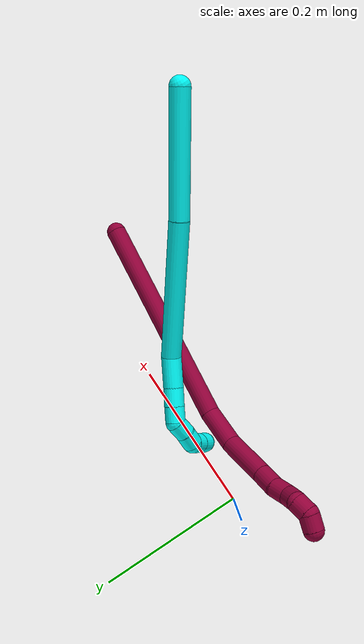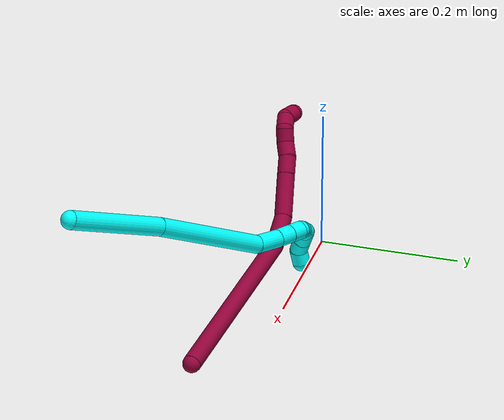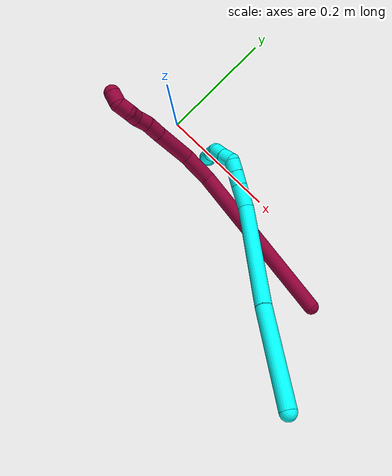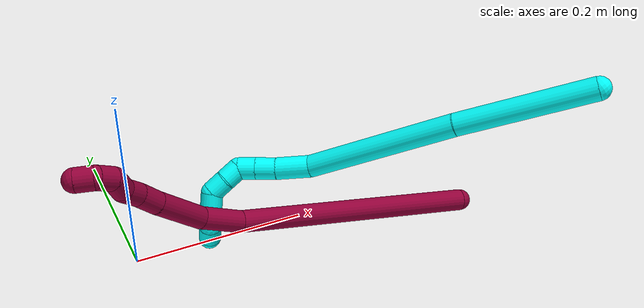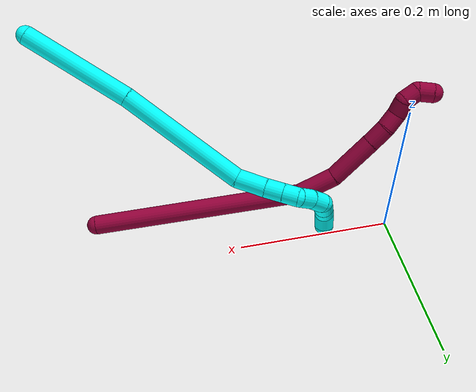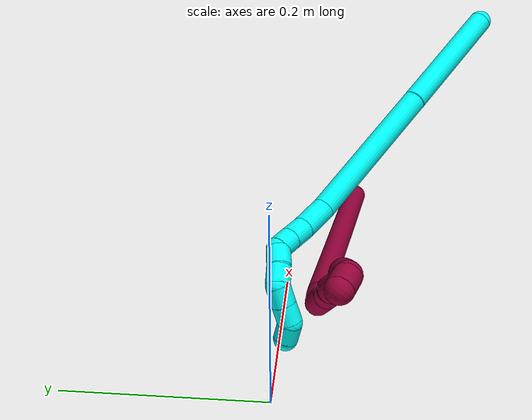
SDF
<sdf version="1.7">
 <world name="default">
  <model name="3">
   <static>0</static>
   <link name="3">
    <collision name="collision-cylinder-e_1_1_4">
     <pose>-0.018677 -0.027858 -0.065253 2.7381 -0.257404 -1.12832</pose>
     <geometry><cylinder><radius>0.0125</radius><length>0.146736</length></cylinder></geometry>
     <surface>
      <friction><ode><mu>1.16</mu><mu2>1.16</mu2><slip1>0</slip1><slip2>0</slip2></ode></friction>
      <contact><ode><kp>1e+06</kp><kd>1</kd><max_vel>0</max_vel><min_depth>0.001</min_depth></ode></contact>
     </surface>
    </collision>
    <visual name="visual-cylinder-e_1_1_4">
     <pose>-0.018677 -0.027858 -0.065253 2.7381 -0.257404 -1.12832</pose>
     <geometry><cylinder><radius>0.0125</radius><length>0.146736</length></cylinder></geometry>
     <material><ambient>0.003922 1 0.996078 1</ambient></material>
    </visual>
    <collision name="collision-cylinder-e_2_4_5">
     <pose>-0.065976 -0.085598 -0.205381 2.76186 -0.341143 -1.46151</pose>
     <geometry><cylinder><radius>0.0125</radius><length>0.171094</length></cylinder></geometry>
     <surface>
      <friction><ode><mu>1.16</mu><mu2>1.16</mu2><slip1>0</slip1><slip2>0</slip2></ode></friction>
      <contact><ode><kp>1e+06</kp><kd>1</kd><max_vel>0</max_vel><min_depth>0.001</min_depth></ode></contact>
     </surface>
    </collision>
    <visual name="visual-cylinder-e_2_4_5">
     <pose>-0.065976 -0.085598 -0.205381 2.76186 -0.341143 -1.46151</pose>
     <geometry><cylinder><radius>0.0125</radius><length>0.171094</length></cylinder></geometry>
     <material><ambient>0.003922 1 0.996078 1</ambient></material>
    </visual>
    <collision name="collision-cylinder-e_3_5_6">
     <pose>-0.095419 -0.125686 -0.296745 2.58734 -0.042391 -0.148777</pose>
     <geometry><cylinder><radius>0.0125</radius><length>0.03882</length></cylinder></geometry>
     <surface>
      <friction><ode><mu>1.16</mu><mu2>1.16</mu2><slip1>0</slip1><slip2>0</slip2></ode></friction>
      <contact><ode><kp>1e+06</kp><kd>1</kd><max_vel>0</max_vel><min_depth>0.001</min_depth></ode></contact>
     </surface>
    </collision>
    <visual name="visual-cylinder-e_3_5_6">
     <pose>-0.095419 -0.125686 -0.296745 2.58734 -0.042391 -0.148777</pose>
     <geometry><cylinder><radius>0.0125</radius><length>0.03882</length></cylinder></geometry>
     <material><ambient>0.003922 1 0.996078 1</ambient></material>
    </visual>
    <collision name="collision-cylinder-e_4_6_7">
     <pose>-0.096244 -0.142754 -0.322582 2.50845 -0.000184 -0.000561</pose>
     <geometry><cylinder><radius>0.0125</radius><length>0.023192</length></cylinder></geometry>
     <surface>
      <friction><ode><mu>1.16</mu><mu2>1.16</mu2><slip1>0</slip1><slip2>0</slip2></ode></friction>
      <contact><ode><kp>1e+06</kp><kd>1</kd><max_vel>0</max_vel><min_depth>0.001</min_depth></ode></contact>
     </surface>
    </collision>
    <visual name="visual-cylinder-e_4_6_7">
     <pose>-0.096244 -0.142754 -0.322582 2.50845 -0.000184 -0.000561</pose>
     <geometry><cylinder><radius>0.0125</radius><length>0.023192</length></cylinder></geometry>
     <material><ambient>0.003922 1 0.996078 1</ambient></material>
    </visual>
    <collision name="collision-cylinder-e_5_7_8">
     <pose>-0.096125 -0.155409 -0.340122 2.52595 0.01208 0.037991</pose>
     <geometry><cylinder><radius>0.0125</radius><length>0.020069</length></cylinder></geometry>
     <surface>
      <friction><ode><mu>1.16</mu><mu2>1.16</mu2><slip1>0</slip1><slip2>0</slip2></ode></friction>
      <contact><ode><kp>1e+06</kp><kd>1</kd><max_vel>0</max_vel><min_depth>0.001</min_depth></ode></contact>
     </surface>
    </collision>
    <visual name="visual-cylinder-e_5_7_8">
     <pose>-0.096125 -0.155409 -0.340122 2.52595 0.01208 0.037991</pose>
     <geometry><cylinder><radius>0.0125</radius><length>0.020069</length></cylinder></geometry>
     <material><ambient>0.003922 1 0.996078 1</ambient></material>
    </visual>
    <collision name="collision-cylinder-e_6_8_9">
     <pose>-0.094594 -0.159812 -0.358126 -3.00068 0.141331 -1.57377</pose>
     <geometry><cylinder><radius>0.0125</radius><length>0.02002</length></cylinder></geometry>
     <surface>
      <friction><ode><mu>1.16</mu><mu2>1.16</mu2><slip1>0</slip1><slip2>0</slip2></ode></friction>
      <contact><ode><kp>1e+06</kp><kd>1</kd><max_vel>0</max_vel><min_depth>0.001</min_depth></ode></contact>
     </surface>
    </collision>
    <visual name="visual-cylinder-e_6_8_9">
     <pose>-0.094594 -0.159812 -0.358126 -3.00068 0.141331 -1.57377</pose>
     <geometry><cylinder><radius>0.0125</radius><length>0.02002</length></cylinder></geometry>
     <material><ambient>0.003922 1 0.996078 1</ambient></material>
    </visual>
    <collision name="collision-cylinder-e_7_9_10">
     <pose>-0.09326 -0.157268 -0.377883 -3.02628 -0.007594 0.131381</pose>
     <geometry><cylinder><radius>0.0125</radius><length>0.020024</length></cylinder></geometry>
     <surface>
      <friction><ode><mu>1.16</mu><mu2>1.16</mu2><slip1>0</slip1><slip2>0</slip2></ode></friction>
      <contact><ode><kp>1e+06</kp><kd>1</kd><max_vel>0</max_vel><min_depth>0.001</min_depth></ode></contact>
     </surface>
    </collision>
    <visual name="visual-cylinder-e_7_9_10">
     <pose>-0.09326 -0.157268 -0.377883 -3.02628 -0.007594 0.131381</pose>
     <geometry><cylinder><radius>0.0125</radius><length>0.020024</length></cylinder></geometry>
     <material><ambient>0.003922 1 0.996078 1</ambient></material>
    </visual>
    <collision name="collision-cylinder-e_8_10_11">
     <pose>-0.095989 -0.14889 -0.394217 -2.29479 -0.268394 0.582146</pose>
     <geometry><cylinder><radius>0.0125</radius><length>0.020007</length></cylinder></geometry>
     <surface>
      <friction><ode><mu>1.16</mu><mu2>1.16</mu2><slip1>0</slip1><slip2>0</slip2></ode></friction>
      <contact><ode><kp>1e+06</kp><kd>1</kd><max_vel>0</max_vel><min_depth>0.001</min_depth></ode></contact>
     </surface>
    </collision>
    <visual name="visual-cylinder-e_8_10_11">
     <pose>-0.095989 -0.14889 -0.394217 -2.29479 -0.268394 0.582146</pose>
     <geometry><cylinder><radius>0.0125</radius><length>0.020007</length></cylinder></geometry>
     <material><ambient>0.003922 1 0.996078 1</ambient></material>
    </visual>
    <collision name="collision-cylinder-e_9_11_12">
     <pose>-0.101208 -0.134349 -0.406934 -2.28391 -0.259372 0.555729</pose>
     <geometry><cylinder><radius>0.0125</radius><length>0.020014</length></cylinder></geometry>
     <surface>
      <friction><ode><mu>1.16</mu><mu2>1.16</mu2><slip1>0</slip1><slip2>0</slip2></ode></friction>
      <contact><ode><kp>1e+06</kp><kd>1</kd><max_vel>0</max_vel><min_depth>0.001</min_depth></ode></contact>
     </surface>
    </collision>
    <visual name="visual-cylinder-e_9_11_12">
     <pose>-0.101208 -0.134349 -0.406934 -2.28391 -0.259372 0.555729</pose>
     <geometry><cylinder><radius>0.0125</radius><length>0.020014</length></cylinder></geometry>
     <material><ambient>0.003922 1 0.996078 1</ambient></material>
    </visual>
    <collision name="collision-cylinder-e_10_12_2">
     <pose>-0.111353 -0.122933 -0.418359 -2.46421 -0.858653 1.82991</pose>
     <geometry><cylinder><radius>0.0125</radius><length>0.020024</length></cylinder></geometry>
     <surface>
      <friction><ode><mu>1.16</mu><mu2>1.16</mu2><slip1>0</slip1><slip2>0</slip2></ode></friction>
      <contact><ode><kp>1e+06</kp><kd>1</kd><max_vel>0</max_vel><min_depth>0.001</min_depth></ode></contact>
     </surface>
    </collision>
    <visual name="visual-cylinder-e_10_12_2">
     <pose>-0.111353 -0.122933 -0.418359 -2.46421 -0.858653 1.82991</pose>
     <geometry><cylinder><radius>0.0125</radius><length>0.020024</length></cylinder></geometry>
     <material><ambient>0.003922 1 0.996078 1</ambient></material>
    </visual>
    <collision name="collision-sphere-2">
     <pose>-0.118932 -0.118833 -0.423457 0 -0 0</pose>
     <geometry><sphere><radius>0.0125</radius></sphere></geometry>
     <surface>
      <friction><ode><mu>1.16</mu><mu2>1.16</mu2><slip1>0</slip1><slip2>0</slip2></ode></friction>
      <contact><ode><kp>1e+06</kp><kd>1</kd><max_vel>0</max_vel><min_depth>0.001</min_depth></ode></contact>
     </surface>
    </collision>
    <visual name="visual-sphere-2">
     <pose>-0.118932 -0.118833 -0.423457 0 -0 0</pose>
     <geometry><sphere><radius>0.0125</radius></sphere></geometry>
     <material><ambient>0.003922 1 0.996078 1</ambient></material>
    </visual>
    <collision name="collision-sphere-12">
     <pose>-0.103774 -0.127034 -0.413261 0 -0 0</pose>
     <geometry><sphere><radius>0.0125</radius></sphere></geometry>
     <surface>
      <friction><ode><mu>1.16</mu><mu2>1.16</mu2><slip1>0</slip1><slip2>0</slip2></ode></friction>
      <contact><ode><kp>1e+06</kp><kd>1</kd><max_vel>0</max_vel><min_depth>0.001</min_depth></ode></contact>
     </surface>
    </collision>
    <visual name="visual-sphere-12">
     <pose>-0.103774 -0.127034 -0.413261 0 -0 0</pose>
     <geometry><sphere><radius>0.0125</radius></sphere></geometry>
     <material><ambient>0.003922 1 0.996078 1</ambient></material>
    </visual>
    <collision name="collision-sphere-11">
     <pose>-0.098641 -0.141664 -0.400606 0 -0 0</pose>
     <geometry><sphere><radius>0.0125</radius></sphere></geometry>
     <surface>
      <friction><ode><mu>1.16</mu><mu2>1.16</mu2><slip1>0</slip1><slip2>0</slip2></ode></friction>
      <contact><ode><kp>1e+06</kp><kd>1</kd><max_vel>0</max_vel><min_depth>0.001</min_depth></ode></contact>
     </surface>
    </collision>
    <visual name="visual-sphere-11">
     <pose>-0.098641 -0.141664 -0.400606 0 -0 0</pose>
     <geometry><sphere><radius>0.0125</radius></sphere></geometry>
     <material><ambient>0.003922 1 0.996078 1</ambient></material>
    </visual>
    <collision name="collision-sphere-10">
     <pose>-0.093336 -0.156116 -0.387828 0 -0 0</pose>
     <geometry><sphere><radius>0.0125</radius></sphere></geometry>
     <surface>
      <friction><ode><mu>1.16</mu><mu2>1.16</mu2><slip1>0</slip1><slip2>0</slip2></ode></friction>
      <contact><ode><kp>1e+06</kp><kd>1</kd><max_vel>0</max_vel><min_depth>0.001</min_depth></ode></contact>
     </surface>
    </collision>
    <visual name="visual-sphere-10">
     <pose>-0.093336 -0.156116 -0.387828 0 -0 0</pose>
     <geometry><sphere><radius>0.0125</radius></sphere></geometry>
     <material><ambient>0.003922 1 0.996078 1</ambient></material>
    </visual>
    <collision name="collision-sphere-9">
     <pose>-0.093184 -0.15842 -0.367937 0 -0 0</pose>
     <geometry><sphere><radius>0.0125</radius></sphere></geometry>
     <surface>
      <friction><ode><mu>1.16</mu><mu2>1.16</mu2><slip1>0</slip1><slip2>0</slip2></ode></friction>
      <contact><ode><kp>1e+06</kp><kd>1</kd><max_vel>0</max_vel><min_depth>0.001</min_depth></ode></contact>
     </surface>
    </collision>
    <visual name="visual-sphere-9">
     <pose>-0.093184 -0.15842 -0.367937 0 -0 0</pose>
     <geometry><sphere><radius>0.0125</radius></sphere></geometry>
     <material><ambient>0.003922 1 0.996078 1</ambient></material>
    </visual>
    <collision name="collision-sphere-4">
     <pose>-0.037355 -0.055715 -0.130507 0 -0 0</pose>
     <geometry><sphere><radius>0.0125</radius></sphere></geometry>
     <surface>
      <friction><ode><mu>1.16</mu><mu2>1.16</mu2><slip1>0</slip1><slip2>0</slip2></ode></friction>
      <contact><ode><kp>1e+06</kp><kd>1</kd><max_vel>0</max_vel><min_depth>0.001</min_depth></ode></contact>
     </surface>
    </collision>
    <visual name="visual-sphere-4">
     <pose>-0.037355 -0.055715 -0.130507 0 -0 0</pose>
     <geometry><sphere><radius>0.0125</radius></sphere></geometry>
     <material><ambient>0.003922 1 0.996078 1</ambient></material>
    </visual>
    <collision name="collision-sphere-1">
     <geometry><sphere><radius>0.0125</radius></sphere></geometry>
     <surface>
      <friction><ode><mu>1.16</mu><mu2>1.16</mu2><slip1>0</slip1><slip2>0</slip2></ode></friction>
      <contact><ode><kp>1e+06</kp><kd>1</kd><max_vel>0</max_vel><min_depth>0.001</min_depth></ode></contact>
     </surface>
    </collision>
    <visual name="visual-sphere-1">
     <geometry><sphere><radius>0.0125</radius></sphere></geometry>
     <material><ambient>0.003922 1 0.996078 1</ambient></material>
    </visual>
    <collision name="collision-sphere-8">
     <pose>-0.096004 -0.161204 -0.348314 0 -0 0</pose>
     <geometry><sphere><radius>0.0125</radius></sphere></geometry>
     <surface>
      <friction><ode><mu>1.16</mu><mu2>1.16</mu2><slip1>0</slip1><slip2>0</slip2></ode></friction>
      <contact><ode><kp>1e+06</kp><kd>1</kd><max_vel>0</max_vel><min_depth>0.001</min_depth></ode></contact>
     </surface>
    </collision>
    <visual name="visual-sphere-8">
     <pose>-0.096004 -0.161204 -0.348314 0 -0 0</pose>
     <geometry><sphere><radius>0.0125</radius></sphere></geometry>
     <material><ambient>0.003922 1 0.996078 1</ambient></material>
    </visual>
    <collision name="collision-sphere-5">
     <pose>-0.094597 -0.11548 -0.280256 0 -0 0</pose>
     <geometry><sphere><radius>0.0125</radius></sphere></geometry>
     <surface>
      <friction><ode><mu>1.16</mu><mu2>1.16</mu2><slip1>0</slip1><slip2>0</slip2></ode></friction>
      <contact><ode><kp>1e+06</kp><kd>1</kd><max_vel>0</max_vel><min_depth>0.001</min_depth></ode></contact>
     </surface>
    </collision>
    <visual name="visual-sphere-5">
     <pose>-0.094597 -0.11548 -0.280256 0 -0 0</pose>
     <geometry><sphere><radius>0.0125</radius></sphere></geometry>
     <material><ambient>0.003922 1 0.996078 1</ambient></material>
    </visual>
    <collision name="collision-sphere-6">
     <pose>-0.096242 -0.135893 -0.313234 0 -0 0</pose>
     <geometry><sphere><radius>0.0125</radius></sphere></geometry>
     <surface>
      <friction><ode><mu>1.16</mu><mu2>1.16</mu2><slip1>0</slip1><slip2>0</slip2></ode></friction>
      <contact><ode><kp>1e+06</kp><kd>1</kd><max_vel>0</max_vel><min_depth>0.001</min_depth></ode></contact>
     </surface>
    </collision>
    <visual name="visual-sphere-6">
     <pose>-0.096242 -0.135893 -0.313234 0 -0 0</pose>
     <geometry><sphere><radius>0.0125</radius></sphere></geometry>
     <material><ambient>0.003922 1 0.996078 1</ambient></material>
    </visual>
    <collision name="collision-sphere-7">
     <pose>-0.096246 -0.149615 -0.33193 0 -0 0</pose>
     <geometry><sphere><radius>0.0125</radius></sphere></geometry>
     <surface>
      <friction><ode><mu>1.16</mu><mu2>1.16</mu2><slip1>0</slip1><slip2>0</slip2></ode></friction>
      <contact><ode><kp>1e+06</kp><kd>1</kd><max_vel>0</max_vel><min_depth>0.001</min_depth></ode></contact>
     </surface>
    </collision>
    <visual name="visual-sphere-7">
     <pose>-0.096246 -0.149615 -0.33193 0 -0 0</pose>
     <geometry><sphere><radius>0.0125</radius></sphere></geometry>
     <material><ambient>0.003922 1 0.996078 1</ambient></material>
    </visual>
    <inertial>
     <pose>-0.063662 -0.089039 -0.219373 0 -0 0</pose>
     <mass>0.5</mass>
     <inertia>
      <ixx>-0.000473</ixx>
      <ixy>0</ixy>
      <ixz>0</ixz>
      <iyy>-0.000724</iyy>
      <iyz>0</iyz>
      <izz>0.000432</izz>
     </inertia>
    </inertial>
   </link>
   <pose>0.430885 -0.208783 0.227028 -0.868736 -0.680769 -2.15559</pose>
  </model>
  <model name="8">
   <static>0</static>
   <link name="8">
    <collision name="collision-cylinder-e_1_1_4">
     <pose>-0.1293 0.03713 0.027686 -0.930077 -1.22683 0.679103</pose>
     <geometry><cylinder><radius>0.0125</radius><length>0.27469</length></cylinder></geometry>
     <surface>
      <friction><ode><mu>1.16</mu><mu2>1.16</mu2><slip1>0</slip1><slip2>0</slip2></ode></friction>
      <contact><ode><kp>1e+06</kp><kd>1</kd><max_vel>0</max_vel><min_depth>0.001</min_depth></ode></contact>
     </surface>
    </collision>
    <visual name="visual-cylinder-e_1_1_4">
     <pose>-0.1293 0.03713 0.027686 -0.930077 -1.22683 0.679103</pose>
     <geometry><cylinder><radius>0.0125</radius><length>0.27469</length></cylinder></geometry>
     <material><ambient>0.584314 0 0.227451 1</ambient></material>
    </visual>
    <collision name="collision-cylinder-e_2_4_5">
     <pose>-0.282879 0.072929 0.062519 0.184065 -1.2799 -0.137203</pose>
     <geometry><cylinder><radius>0.0125</radius><length>0.050688</length></cylinder></geometry>
     <surface>
      <friction><ode><mu>1.16</mu><mu2>1.16</mu2><slip1>0</slip1><slip2>0</slip2></ode></friction>
      <contact><ode><kp>1e+06</kp><kd>1</kd><max_vel>0</max_vel><min_depth>0.001</min_depth></ode></contact>
     </surface>
    </collision>
    <visual name="visual-cylinder-e_2_4_5">
     <pose>-0.282879 0.072929 0.062519 0.184065 -1.2799 -0.137203</pose>
     <geometry><cylinder><radius>0.0125</radius><length>0.050688</length></cylinder></geometry>
     <material><ambient>0.584314 0 0.227451 1</ambient></material>
    </visual>
    <collision name="collision-cylinder-e_3_5_6">
     <pose>-0.335734 0.060023 0.080022 0.840897 -1.07291 -0.5197</pose>
     <geometry><cylinder><radius>0.0125</radius><length>0.065049</length></cylinder></geometry>
     <surface>
      <friction><ode><mu>1.16</mu><mu2>1.16</mu2><slip1>0</slip1><slip2>0</slip2></ode></friction>
      <contact><ode><kp>1e+06</kp><kd>1</kd><max_vel>0</max_vel><min_depth>0.001</min_depth></ode></contact>
     </surface>
    </collision>
    <visual name="visual-cylinder-e_3_5_6">
     <pose>-0.335734 0.060023 0.080022 0.840897 -1.07291 -0.5197</pose>
     <geometry><cylinder><radius>0.0125</radius><length>0.065049</length></cylinder></geometry>
     <material><ambient>0.584314 0 0.227451 1</ambient></material>
    </visual>
    <collision name="collision-cylinder-e_4_6_7">
     <pose>-0.375703 0.043223 0.095345 0.810842 -1.00669 -0.464161</pose>
     <geometry><cylinder><radius>0.0125</radius><length>0.026963</length></cylinder></geometry>
     <surface>
      <friction><ode><mu>1.16</mu><mu2>1.16</mu2><slip1>0</slip1><slip2>0</slip2></ode></friction>
      <contact><ode><kp>1e+06</kp><kd>1</kd><max_vel>0</max_vel><min_depth>0.001</min_depth></ode></contact>
     </surface>
    </collision>
    <visual name="visual-cylinder-e_4_6_7">
     <pose>-0.375703 0.043223 0.095345 0.810842 -1.00669 -0.464161</pose>
     <geometry><cylinder><radius>0.0125</radius><length>0.026963</length></cylinder></geometry>
     <material><ambient>0.584314 0 0.227451 1</ambient></material>
    </visual>
    <collision name="collision-cylinder-e_5_7_8">
     <pose>-0.396648 0.03261 0.102331 1.21191 -1.0286 -0.746334</pose>
     <geometry><cylinder><radius>0.0125</radius><length>0.022304</length></cylinder></geometry>
     <surface>
      <friction><ode><mu>1.16</mu><mu2>1.16</mu2><slip1>0</slip1><slip2>0</slip2></ode></friction>
      <contact><ode><kp>1e+06</kp><kd>1</kd><max_vel>0</max_vel><min_depth>0.001</min_depth></ode></contact>
     </surface>
    </collision>
    <visual name="visual-cylinder-e_5_7_8">
     <pose>-0.396648 0.03261 0.102331 1.21191 -1.0286 -0.746334</pose>
     <geometry><cylinder><radius>0.0125</radius><length>0.022304</length></cylinder></geometry>
     <material><ambient>0.584314 0 0.227451 1</ambient></material>
    </visual>
    <collision name="collision-cylinder-e_6_8_9">
     <pose>-0.412376 0.020651 0.108983 0.956894 -0.654997 -0.348816</pose>
     <geometry><cylinder><radius>0.0125</radius><length>0.020273</length></cylinder></geometry>
     <surface>
      <friction><ode><mu>1.16</mu><mu2>1.16</mu2><slip1>0</slip1><slip2>0</slip2></ode></friction>
      <contact><ode><kp>1e+06</kp><kd>1</kd><max_vel>0</max_vel><min_depth>0.001</min_depth></ode></contact>
     </surface>
    </collision>
    <visual name="visual-cylinder-e_6_8_9">
     <pose>-0.412376 0.020651 0.108983 0.956894 -0.654997 -0.348816</pose>
     <geometry><cylinder><radius>0.0125</radius><length>0.020273</length></cylinder></geometry>
     <material><ambient>0.584314 0 0.227451 1</ambient></material>
    </visual>
    <collision name="collision-cylinder-e_7_9_10">
     <pose>-0.42822 0.012247 0.115389 0.801636 -1.31285 -0.631106</pose>
     <geometry><cylinder><radius>0.0125</radius><length>0.02</length></cylinder></geometry>
     <surface>
      <friction><ode><mu>1.16</mu><mu2>1.16</mu2><slip1>0</slip1><slip2>0</slip2></ode></friction>
      <contact><ode><kp>1e+06</kp><kd>1</kd><max_vel>0</max_vel><min_depth>0.001</min_depth></ode></contact>
     </surface>
    </collision>
    <visual name="visual-cylinder-e_7_9_10">
     <pose>-0.42822 0.012247 0.115389 0.801636 -1.31285 -0.631106</pose>
     <geometry><cylinder><radius>0.0125</radius><length>0.02</length></cylinder></geometry>
     <material><ambient>0.584314 0 0.227451 1</ambient></material>
    </visual>
    <collision name="collision-cylinder-e_8_10_2">
     <pose>-0.446235 0.015458 0.119449 -1.14523 -0.98501 0.666095</pose>
     <geometry><cylinder><radius>0.0125</radius><length>0.020032</length></cylinder></geometry>
     <surface>
      <friction><ode><mu>1.16</mu><mu2>1.16</mu2><slip1>0</slip1><slip2>0</slip2></ode></friction>
      <contact><ode><kp>1e+06</kp><kd>1</kd><max_vel>0</max_vel><min_depth>0.001</min_depth></ode></contact>
     </surface>
    </collision>
    <visual name="visual-cylinder-e_8_10_2">
     <pose>-0.446235 0.015458 0.119449 -1.14523 -0.98501 0.666095</pose>
     <geometry><cylinder><radius>0.0125</radius><length>0.020032</length></cylinder></geometry>
     <material><ambient>0.584314 0 0.227451 1</ambient></material>
    </visual>
    <collision name="collision-sphere-2">
     <pose>-0.454582 0.020501 0.121735 0 -0 0</pose>
     <geometry><sphere><radius>0.0125</radius></sphere></geometry>
     <surface>
      <friction><ode><mu>1.16</mu><mu2>1.16</mu2><slip1>0</slip1><slip2>0</slip2></ode></friction>
      <contact><ode><kp>1e+06</kp><kd>1</kd><max_vel>0</max_vel><min_depth>0.001</min_depth></ode></contact>
     </surface>
    </collision>
    <visual name="visual-sphere-2">
     <pose>-0.454582 0.020501 0.121735 0 -0 0</pose>
     <geometry><sphere><radius>0.0125</radius></sphere></geometry>
     <material><ambient>0.584314 0 0.227451 1</ambient></material>
    </visual>
    <collision name="collision-sphere-10">
     <pose>-0.437889 0.010414 0.117163 0 -0 0</pose>
     <geometry><sphere><radius>0.0125</radius></sphere></geometry>
     <surface>
      <friction><ode><mu>1.16</mu><mu2>1.16</mu2><slip1>0</slip1><slip2>0</slip2></ode></friction>
      <contact><ode><kp>1e+06</kp><kd>1</kd><max_vel>0</max_vel><min_depth>0.001</min_depth></ode></contact>
     </surface>
    </collision>
    <visual name="visual-sphere-10">
     <pose>-0.437889 0.010414 0.117163 0 -0 0</pose>
     <geometry><sphere><radius>0.0125</radius></sphere></geometry>
     <material><ambient>0.584314 0 0.227451 1</ambient></material>
    </visual>
    <collision name="collision-sphere-9">
     <pose>-0.418551 0.01408 0.113614 0 -0 0</pose>
     <geometry><sphere><radius>0.0125</radius></sphere></geometry>
     <surface>
      <friction><ode><mu>1.16</mu><mu2>1.16</mu2><slip1>0</slip1><slip2>0</slip2></ode></friction>
      <contact><ode><kp>1e+06</kp><kd>1</kd><max_vel>0</max_vel><min_depth>0.001</min_depth></ode></contact>
     </surface>
    </collision>
    <visual name="visual-sphere-9">
     <pose>-0.418551 0.01408 0.113614 0 -0 0</pose>
     <geometry><sphere><radius>0.0125</radius></sphere></geometry>
     <material><ambient>0.584314 0 0.227451 1</ambient></material>
    </visual>
    <collision name="collision-sphere-4">
     <pose>-0.2586 0.07426 0.055373 0 -0 0</pose>
     <geometry><sphere><radius>0.0125</radius></sphere></geometry>
     <surface>
      <friction><ode><mu>1.16</mu><mu2>1.16</mu2><slip1>0</slip1><slip2>0</slip2></ode></friction>
      <contact><ode><kp>1e+06</kp><kd>1</kd><max_vel>0</max_vel><min_depth>0.001</min_depth></ode></contact>
     </surface>
    </collision>
    <visual name="visual-sphere-4">
     <pose>-0.2586 0.07426 0.055373 0 -0 0</pose>
     <geometry><sphere><radius>0.0125</radius></sphere></geometry>
     <material><ambient>0.584314 0 0.227451 1</ambient></material>
    </visual>
    <collision name="collision-sphere-1">
     <geometry><sphere><radius>0.0125</radius></sphere></geometry>
     <surface>
      <friction><ode><mu>1.16</mu><mu2>1.16</mu2><slip1>0</slip1><slip2>0</slip2></ode></friction>
      <contact><ode><kp>1e+06</kp><kd>1</kd><max_vel>0</max_vel><min_depth>0.001</min_depth></ode></contact>
     </surface>
    </collision>
    <visual name="visual-sphere-1">
     <geometry><sphere><radius>0.0125</radius></sphere></geometry>
     <material><ambient>0.584314 0 0.227451 1</ambient></material>
    </visual>
    <collision name="collision-sphere-8">
     <pose>-0.406201 0.027222 0.104353 0 -0 0</pose>
     <geometry><sphere><radius>0.0125</radius></sphere></geometry>
     <surface>
      <friction><ode><mu>1.16</mu><mu2>1.16</mu2><slip1>0</slip1><slip2>0</slip2></ode></friction>
      <contact><ode><kp>1e+06</kp><kd>1</kd><max_vel>0</max_vel><min_depth>0.001</min_depth></ode></contact>
     </surface>
    </collision>
    <visual name="visual-sphere-8">
     <pose>-0.406201 0.027222 0.104353 0 -0 0</pose>
     <geometry><sphere><radius>0.0125</radius></sphere></geometry>
     <material><ambient>0.584314 0 0.227451 1</ambient></material>
    </visual>
    <collision name="collision-sphere-5">
     <pose>-0.307158 0.071599 0.069665 0 -0 0</pose>
     <geometry><sphere><radius>0.0125</radius></sphere></geometry>
     <surface>
      <friction><ode><mu>1.16</mu><mu2>1.16</mu2><slip1>0</slip1><slip2>0</slip2></ode></friction>
      <contact><ode><kp>1e+06</kp><kd>1</kd><max_vel>0</max_vel><min_depth>0.001</min_depth></ode></contact>
     </surface>
    </collision>
    <visual name="visual-sphere-5">
     <pose>-0.307158 0.071599 0.069665 0 -0 0</pose>
     <geometry><sphere><radius>0.0125</radius></sphere></geometry>
     <material><ambient>0.584314 0 0.227451 1</ambient></material>
    </visual>
    <collision name="collision-sphere-6">
     <pose>-0.36431 0.048448 0.090379 0 -0 0</pose>
     <geometry><sphere><radius>0.0125</radius></sphere></geometry>
     <surface>
      <friction><ode><mu>1.16</mu><mu2>1.16</mu2><slip1>0</slip1><slip2>0</slip2></ode></friction>
      <contact><ode><kp>1e+06</kp><kd>1</kd><max_vel>0</max_vel><min_depth>0.001</min_depth></ode></contact>
     </surface>
    </collision>
    <visual name="visual-sphere-6">
     <pose>-0.36431 0.048448 0.090379 0 -0 0</pose>
     <geometry><sphere><radius>0.0125</radius></sphere></geometry>
     <material><ambient>0.584314 0 0.227451 1</ambient></material>
    </visual>
    <collision name="collision-sphere-7">
     <pose>-0.387095 0.037998 0.10031 0 -0 0</pose>
     <geometry><sphere><radius>0.0125</radius></sphere></geometry>
     <surface>
      <friction><ode><mu>1.16</mu><mu2>1.16</mu2><slip1>0</slip1><slip2>0</slip2></ode></friction>
      <contact><ode><kp>1e+06</kp><kd>1</kd><max_vel>0</max_vel><min_depth>0.001</min_depth></ode></contact>
     </surface>
    </collision>
    <visual name="visual-sphere-7">
     <pose>-0.387095 0.037998 0.10031 0 -0 0</pose>
     <geometry><sphere><radius>0.0125</radius></sphere></geometry>
     <material><ambient>0.584314 0 0.227451 1</ambient></material>
    </visual>
    <inertial>
     <pose>-0.233072 0.041333 0.055485 0 -0 0</pose>
     <mass>0.5</mass>
     <inertia>
      <ixx>0.000799</ixx>
      <ixy>0</ixy>
      <ixz>0</ixz>
      <iyy>0.002037</iyy>
      <iyz>0</iyz>
      <izz>0.00123</izz>
     </inertia>
    </inertial>
   </link>
   <pose>0.383441 -0.069281 0.011508 -0.867506 0.215546 0.22243</pose>
  </model>
 </world>
</sdf>
